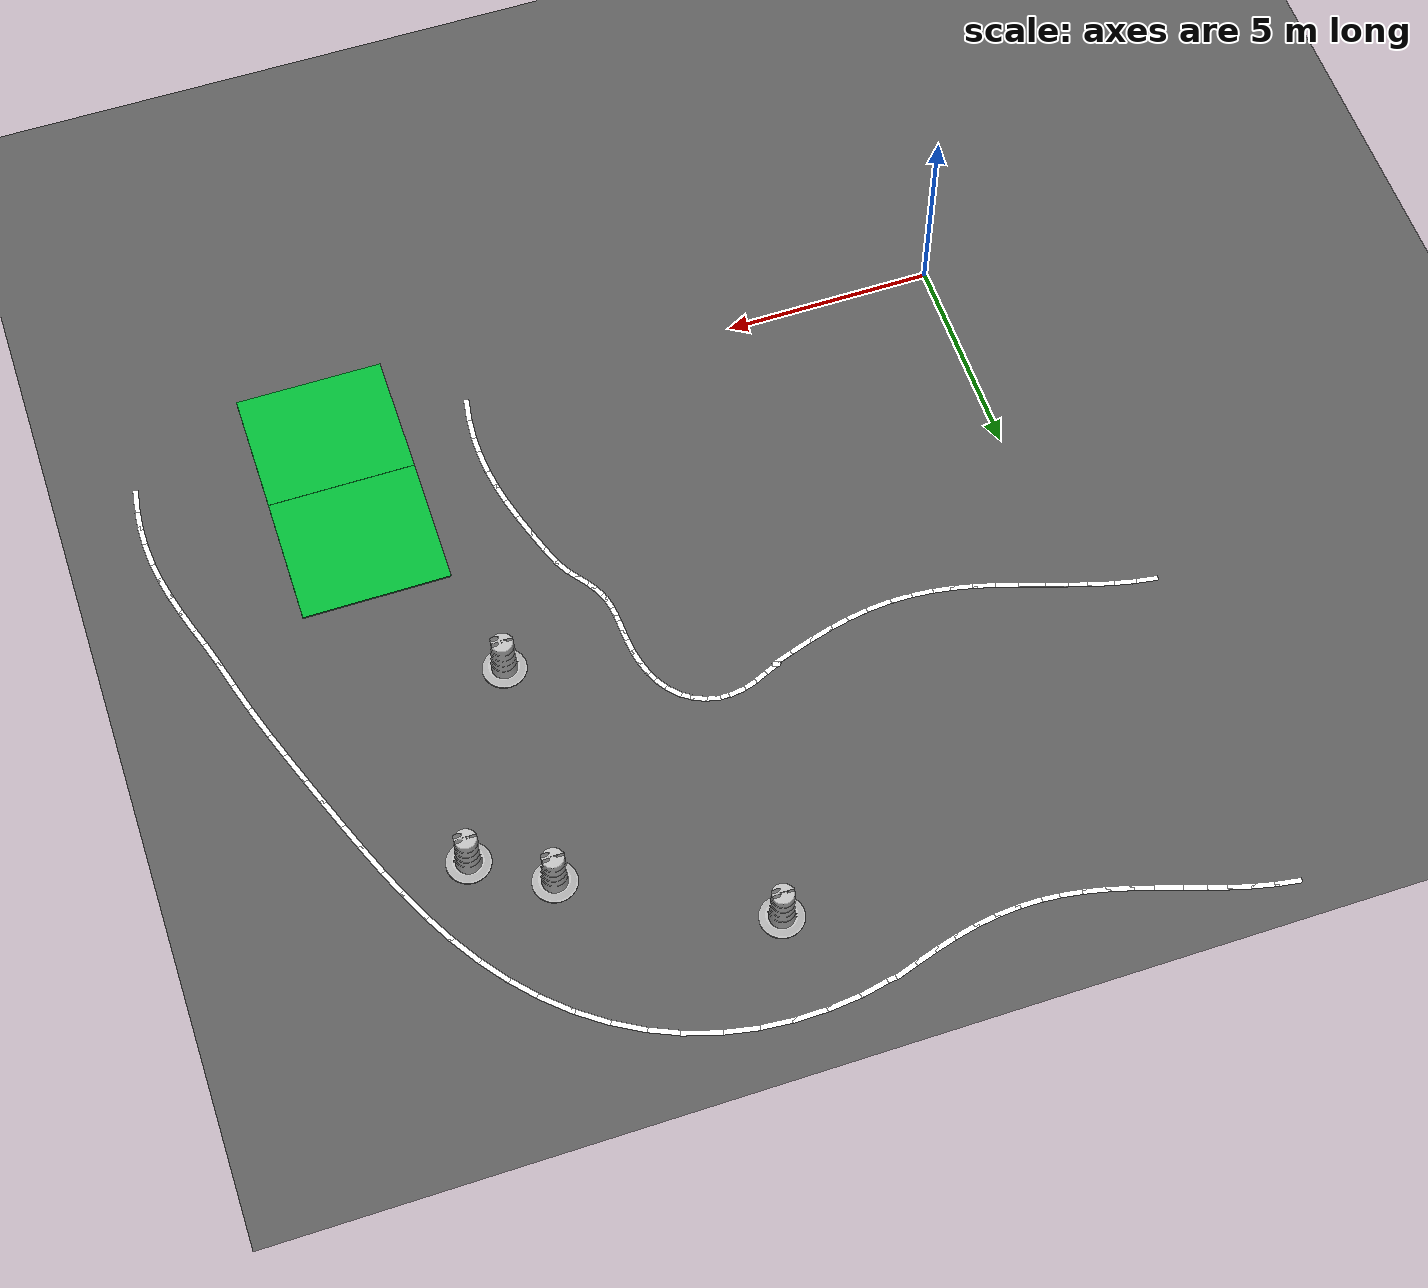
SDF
<sdf version="1.6">
 <model name="orange_igvc">
  <static>true</static>
  <link name="ground">
   <visual name="visual">
    <geometry><plane><size>43 37</size></plane></geometry>
    <material><ambient>0.35 0.35 0.35 1.0</ambient><diffuse>0.35 0.35 0.35 1.0</diffuse></material>
   </visual>
   <collision name="collision">
    <geometry><plane><size>43 37</size></plane></geometry>
    <surface><friction><ode><mu>100</mu><mu2>50</mu2></ode></friction></surface>
   </collision>
  </link>
  <link name="construction_barrel11">
   <pose>8.90 14.94 0.05 0 0 0</pose>
   <visual name="visual">
    <geometry><mesh><uri>model://construction_barrel/meshes/construction_barrel.dae</uri></mesh></geometry>
   </visual>
   <collision name="collision">
    <geometry><mesh><uri>model://construction_barrel/meshes/construction_barrel.dae</uri></mesh></geometry>
   </collision>
  </link>
  <link name="construction_barrel19">
   <pose>13.27 12.60 0.05 0 0 0</pose>
   <visual name="visual">
    <geometry><mesh><uri>model://construction_barrel/meshes/construction_barrel.dae</uri></mesh></geometry>
   </visual>
   <collision name="collision">
    <geometry><mesh><uri>model://construction_barrel/meshes/construction_barrel.dae</uri></mesh></geometry>
   </collision>
  </link>
  <link name="construction_barrel23">
   <pose>14.91 11.58 0.05 0 0 0</pose>
   <visual name="visual">
    <geometry><mesh><uri>model://construction_barrel/meshes/construction_barrel.dae</uri></mesh></geometry>
   </visual>
   <collision name="collision">
    <geometry><mesh><uri>model://construction_barrel/meshes/construction_barrel.dae</uri></mesh></geometry>
   </collision>
  </link>
  <link name="construction_barrel31">
   <pose>12.79 7.22 0.05 0 0 0</pose>
   <visual name="visual">
    <geometry><mesh><uri>model://construction_barrel/meshes/construction_barrel.dae</uri></mesh></geometry>
   </visual>
   <collision name="collision">
    <geometry><mesh><uri>model://construction_barrel/meshes/construction_barrel.dae</uri></mesh></geometry>
   </collision>
  </link>
  <link name="white_line_inner_70">
   <pose>11.611917648340356 0.25000000000000044 0.005 0 0 1.4125668012787456</pose>
   <visual name="visual">
    <geometry><box><size>0.6063251121473049 0.127 0.001</size></box></geometry>
    <material><ambient>1.0 1.0 1.0 1.0</ambient><diffuse>1.0 1.0 1.0 1.0</diffuse></material>
   </visual>
  </link>
  <link name="white_line_inner_71">
   <pose>11.67285191012886 0.7500000000000004 0.005 0 0 1.486820628804426</pose>
   <visual name="visual">
    <geometry><box><size>0.6017681745223843 0.127 0.001</size></box></geometry>
    <material><ambient>1.0 1.0 1.0 1.0</ambient><diffuse>1.0 1.0 1.0 1.0</diffuse></material>
   </visual>
  </link>
  <link name="white_line_inner_72">
   <pose>11.694874335370326 1.2500000000000004 0.005 0 0 1.5668802988157031</pose>
   <visual name="visual">
    <geometry><box><size>0.6000038338432805 0.127 0.001</size></box></geometry>
    <material><ambient>1.0 1.0 1.0 1.0</ambient><diffuse>1.0 1.0 1.0 1.0</diffuse></material>
   </visual>
  </link>
  <link name="white_line_inner_73">
   <pose>11.676711340682633 1.7500000000000004 0.005 0 0 1.6472152468510888</pose>
   <visual name="visual">
    <geometry><box><size>0.6014635237781666 0.127 0.001</size></box></geometry>
    <material><ambient>1.0 1.0 1.0 1.0</ambient><diffuse>1.0 1.0 1.0 1.0</diffuse></material>
   </visual>
  </link>
  <link name="white_line_inner_74">
   <pose>11.61941331392952 2.2500000000000004 0.005 0 0 1.7222516189107373</pose>
   <visual name="visual">
    <geometry><box><size>0.6057900033305835 0.127 0.001</size></box></geometry>
    <material><ambient>1.0 1.0 1.0 1.0</ambient><diffuse>1.0 1.0 1.0 1.0</diffuse></material>
   </visual>
  </link>
  <link name="white_line_inner_75">
   <pose>11.52629386902502 2.7500000000000004 0.005 0 0 1.7872070808961045</pose>
   <visual name="visual">
    <geometry><box><size>0.6119413172228307 0.127 0.001</size></box></geometry>
    <material><ambient>1.0 1.0 1.0 1.0</ambient><diffuse>1.0 1.0 1.0 1.0</diffuse></material>
   </visual>
  </link>
  <link name="white_line_inner_76">
   <pose>11.402738215648897 3.2500000000000004 0.005 0 0 1.8385757275982324</pose>
   <visual name="visual">
    <geometry><box><size>0.6184781338331522 0.127 0.001</size></box></geometry>
    <material><ambient>1.0 1.0 1.0 1.0</ambient><diffuse>1.0 1.0 1.0 1.0</diffuse></material>
   </visual>
  </link>
  <link name="white_line_inner_77">
   <pose>11.255891726083314 3.750000000000001 0.005 0 0 1.8741521695525571</pose>
   <visual name="visual">
    <geometry><box><size>0.6239226254668141 0.127 0.001</size></box></geometry>
    <material><ambient>1.0 1.0 1.0 1.0</ambient><diffuse>1.0 1.0 1.0 1.0</diffuse></material>
   </visual>
  </link>
  <link name="white_line_inner_78">
   <pose>11.094246709725727 4.250000000000001 0.005 0 0 1.8927535861324738</pose>
   <visual name="visual">
    <geometry><box><size>0.6270826048143481 0.127 0.001</size></box></geometry>
    <material><ambient>1.0 1.0 1.0 1.0</ambient><diffuse>1.0 1.0 1.0 1.0</diffuse></material>
   </visual>
  </link>
  <link name="white_line_inner_79">
   <pose>10.92740494203569 4.71753089076383 0.005 0 0 1.9371100195612485</pose>
   <visual name="visual">
    <geometry><box><size>0.5659775097596811 0.127 0.001</size></box></geometry>
    <material><ambient>1.0 1.0 1.0 1.0</ambient><diffuse>1.0 1.0 1.0 1.0</diffuse></material>
   </visual>
  </link>
  <link name="white_line_inner_80">
   <pose>10.760937143077209 5.082615791072405 0.005 0 0 2.083276681019217</pose>
   <visual name="visual">
    <geometry><box><size>0.43860875706233027 0.127 0.001</size></box></geometry>
    <material><ambient>1.0 1.0 1.0 1.0</ambient><diffuse>1.0 1.0 1.0 1.0</diffuse></material>
   </visual>
  </link>
  <link name="white_line_inner_81">
   <pose>10.59762490311704 5.336070156502927 0.005 0 0 2.2195356266287636</pose>
   <visual name="visual">
    <geometry><box><size>0.36579876002221146 0.127 0.001</size></box></geometry>
    <material><ambient>1.0 1.0 1.0 1.0</ambient><diffuse>1.0 1.0 1.0 1.0</diffuse></material>
   </visual>
  </link>
  <link name="white_line_inner_82">
   <pose>10.444179773702961 5.540775684752377 0.005 0 0 2.2080879807904714</pose>
   <visual name="visual">
    <geometry><box><size>0.34587262712506733 0.127 0.001</size></box></geometry>
    <material><ambient>1.0 1.0 1.0 1.0</ambient><diffuse>1.0 1.0 1.0 1.0</diffuse></material>
   </visual>
  </link>
  <link name="white_line_inner_83">
   <pose>10.308555353948575 5.734220658287349 0.005 0 0 2.1542611468571966</pose>
   <visual name="visual">
    <geometry><box><size>0.32680198911302827 0.127 0.001</size></box></geometry>
    <material><ambient>1.0 1.0 1.0 1.0</ambient><diffuse>1.0 1.0 1.0 1.0</diffuse></material>
   </visual>
  </link>
  <link name="white_line_inner_84">
   <pose>10.19639130803421 5.922758296306911 0.005 0 0 2.0575182158674155</pose>
   <visual name="visual">
    <geometry><box><size>0.31246957917884266 0.127 0.001</size></box></geometry>
    <material><ambient>1.0 1.0 1.0 1.0</ambient><diffuse>1.0 1.0 1.0 1.0</diffuse></material>
   </visual>
  </link>
  <link name="white_line_inner_85">
   <pose>10.1103453461517 6.11332988712447 0.005 0 0 1.9305098332265227</pose>
   <visual name="visual">
    <geometry><box><size>0.30656835584286357 0.127 0.001</size></box></geometry>
    <material><ambient>1.0 1.0 1.0 1.0</ambient><diffuse>1.0 1.0 1.0 1.0</diffuse></material>
   </visual>
  </link>
  <link name="white_line_inner_86">
   <pose>10.049940894335915 6.312652349398784 0.005 0 0 1.8009189581466902</pose>
   <visual name="visual">
    <geometry><box><size>0.3108559093196648 0.127 0.001</size></box></geometry>
    <material><ambient>1.0 1.0 1.0 1.0</ambient><diffuse>1.0 1.0 1.0 1.0</diffuse></material>
   </visual>
  </link>
  <link name="white_line_inner_87">
   <pose>10.011688437844658 6.52641695321627 0.005 0 0 1.6979431758905918</pose>
   <visual name="visual">
    <geometry><box><size>0.3240403064157617 0.127 0.001</size></box></geometry>
    <material><ambient>1.0 1.0 1.0 1.0</ambient><diffuse>1.0 1.0 1.0 1.0</diffuse></material>
   </visual>
  </link>
  <link name="white_line_inner_88">
   <pose>9.98946770429962 6.758576141107834 0.005 0 0 1.6369245774617542</pose>
   <visual name="visual">
    <geometry><box><size>0.34261686664679064 0.127 0.001</size></box></geometry>
    <material><ambient>1.0 1.0 1.0 1.0</ambient><diffuse>1.0 1.0 1.0 1.0</diffuse></material>
   </visual>
  </link>
  <link name="white_line_inner_89">
   <pose>9.97513461067819 7.010787565055372 0.005 0 0 1.6189188952179305</pose>
   <visual name="visual">
    <geometry><box><size>0.36264031325528234 0.127 0.001</size></box></geometry>
    <material><ambient>1.0 1.0 1.0 1.0</ambient><diffuse>1.0 1.0 1.0 1.0</diffuse></material>
   </visual>
  </link>
  <link name="white_line_inner_90">
   <pose>9.95929698696899 7.282070196946199 0.005 0 0 1.6386407499908542</pose>
   <visual name="visual">
    <geometry><box><size>0.3808751680827147 0.127 0.001</size></box></geometry>
    <material><ambient>1.0 1.0 1.0 1.0</ambient><diffuse>1.0 1.0 1.0 1.0</diffuse></material>
   </visual>
  </link>
  <link name="white_line_inner_91">
   <pose>9.932188308423294 7.568707976455217 0.005 0 0 1.6902608150786145</pose>
   <visual name="visual">
    <geometry><box><size>0.3951502117608411 0.127 0.001</size></box></geometry>
    <material><ambient>1.0 1.0 1.0 1.0</ambient><diffuse>1.0 1.0 1.0 1.0</diffuse></material>
   </visual>
  </link>
  <link name="white_line_inner_92">
   <pose>9.884560348003163 7.864413704876883 0.005 0 0 1.7695024777929744</pose>
   <visual name="visual">
    <geometry><box><size>0.40435372591740204 0.127 0.001</size></box></geometry>
    <material><ambient>1.0 1.0 1.0 1.0</ambient><diffuse>1.0 1.0 1.0 1.0</diffuse></material>
   </visual>
  </link>
  <link name="white_line_inner_93">
   <pose>9.808514540670817 8.160741860030111 0.005 0 0 1.8738229281370924</pose>
   <visual name="visual">
    <geometry><box><size>0.4083400980282311 0.127 0.001</size></box></geometry>
    <material><ambient>1.0 1.0 1.0 1.0</ambient><diffuse>1.0 1.0 1.0 1.0</diffuse></material>
   </visual>
  </link>
  <link name="white_line_inner_94">
   <pose>9.698198014107042 8.44771590054928 0.005 0 0 2.0018734805407825</pose>
   <visual name="visual">
    <geometry><box><size>0.40781693572746747 0.127 0.001</size></box></geometry>
    <material><ambient>1.0 1.0 1.0 1.0</ambient><diffuse>1.0 1.0 1.0 1.0</diffuse></material>
   </visual>
  </link>
  <link name="white_line_inner_95">
   <pose>9.550303104602943 8.714615570900172 0.005 0 0 2.1526176604836973</pose>
   <visual name="visual">
    <geometry><box><size>0.40419376126991347 0.127 0.001</size></box></geometry>
    <material><ambient>1.0 1.0 1.0 1.0</ambient><diffuse>1.0 1.0 1.0 1.0</diffuse></material>
   </visual>
  </link>
  <link name="white_line_inner_96">
   <pose>9.364327550101503 8.950854558831319 0.005 0 0 2.324174609099814</pose>
   <visual name="visual">
    <geometry><box><size>0.39934290314154974 0.127 0.001</size></box></geometry>
    <material><ambient>1.0 1.0 1.0 1.0</ambient><diffuse>1.0 1.0 1.0 1.0</diffuse></material>
   </visual>
  </link>
  <link name="white_line_inner_97">
   <pose>9.142574741586525 9.146869997119559 0.005 0 0 2.5125806330810847</pose>
   <visual name="visual">
    <geometry><box><size>0.3952268328136672 0.127 0.001</size></box></geometry>
    <material><ambient>1.0 1.0 1.0 1.0</ambient><diffuse>1.0 1.0 1.0 1.0</diffuse></material>
   </visual>
  </link>
  <link name="white_line_inner_98">
   <pose>8.889897380401525 9.294943570008613 0.005 0 0 2.7110699676302135</pose>
   <visual name="visual">
    <geometry><box><size>0.3934055144641626 0.127 0.001</size></box></geometry>
    <material><ambient>1.0 1.0 1.0 1.0</ambient><diffuse>1.0 1.0 1.0 1.0</diffuse></material>
   </visual>
  </link>
  <link name="white_line_inner_99">
   <pose>8.613211434789378 9.389879560125891 0.005 0 0 2.9106602727090336</pose>
   <visual name="visual">
    <geometry><box><size>0.39455985482060363 0.127 0.001</size></box></geometry>
    <material><ambient>1.0 1.0 1.0 1.0</ambient><diffuse>1.0 1.0 1.0 1.0</diffuse></material>
   </visual>
  </link>
  <link name="white_line_inner_100">
   <pose>8.320828258266358 9.429477565235976 0.005 0 0 3.102101203244376</pose>
   <visual name="visual">
    <geometry><box><size>0.3982586059972745 0.127 0.001</size></box></geometry>
    <material><ambient>1.0 1.0 1.0 1.0</ambient><diffuse>1.0 1.0 1.0 1.0</diffuse></material>
   </visual>
  </link>
  <link name="white_line_inner_101">
   <pose>8.021669208984925 9.414755714183073 0.005 0 0 -3.0051810573138606</pose>
   <visual name="visual">
    <geometry><box><size>0.4031078039558482 0.127 0.001</size></box></geometry>
    <material><ambient>1.0 1.0 1.0 1.0</ambient><diffuse>1.0 1.0 1.0 1.0</diffuse></material>
   </visual>
  </link>
  <link name="white_line_inner_102">
   <pose>7.724437591096623 9.349902383881318 0.005 0 0 -2.8494000201537975</pose>
   <visual name="visual">
    <geometry><box><size>0.40719164058462987 0.127 0.001</size></box></geometry>
    <material><ambient>1.0 1.0 1.0 1.0</ambient><diffuse>1.0 1.0 1.0 1.0</diffuse></material>
   </visual>
  </link>
  <link name="white_line_inner_103">
   <pose>7.436826276058932 9.241958656897685 0.005 0 0 -2.7159993606681874</pose>
   <visual name="visual">
    <geometry><box><size>0.4085785058951492 0.127 0.001</size></box></geometry>
    <material><ambient>1.0 1.0 1.0 1.0</ambient><diffuse>1.0 1.0 1.0 1.0</diffuse></material>
   </visual>
  </link>
  <link name="white_line_inner_104">
   <pose>7.110949960936896 9.101435305184651 0.005 0 0 -2.748669920176373</pose>
   <visual name="visual">
    <geometry><box><size>0.501281267019452 0.127 0.001</size></box></geometry>
    <material><ambient>1.0 1.0 1.0 1.0</ambient><diffuse>1.0 1.0 1.0 1.0</diffuse></material>
   </visual>
  </link>
  <link name="white_line_inner_105">
   <pose>6.961827474024139 9.01230623778753 0.005 0 0 -0.32744670137428816</pose>
   <visual name="visual">
    <geometry><box><size>0.17652209786668063 0.127 0.001</size></box></geometry>
    <material><ambient>1.0 1.0 1.0 1.0</ambient><diffuse>1.0 1.0 1.0 1.0</diffuse></material>
   </visual>
  </link>
  <link name="white_line_inner_106">
   <pose>6.7490277923868085 8.916442478737114 0.005 0 0 -2.8178602727569557</pose>
   <visual name="visual">
    <geometry><box><size>0.6253447619169877 0.127 0.001</size></box></geometry>
    <material><ambient>1.0 1.0 1.0 1.0</ambient><diffuse>1.0 1.0 1.0 1.0</diffuse></material>
   </visual>
  </link>
  <link name="white_line_inner_107">
   <pose>6.249999999999999 8.754158973102301 0.005 0 0 -2.8365209423373487</pose>
   <visual name="visual">
    <geometry><box><size>0.6242049454353731 0.127 0.001</size></box></geometry>
    <material><ambient>1.0 1.0 1.0 1.0</ambient><diffuse>1.0 1.0 1.0 1.0</diffuse></material>
   </visual>
  </link>
  <link name="white_line_inner_108">
   <pose>5.749999999999999 8.606092986514444 0.005 0 0 -2.8710319324557583</pose>
   <visual name="visual">
    <geometry><box><size>0.6188760986857685 0.127 0.001</size></box></geometry>
    <material><ambient>1.0 1.0 1.0 1.0</ambient><diffuse>1.0 1.0 1.0 1.0</diffuse></material>
   </visual>
  </link>
  <link name="white_line_inner_109">
   <pose>5.249999999999999 8.480807117055999 0.005 0 0 -2.9214382244439383</pose>
   <visual name="visual">
    <geometry><box><size>0.612366615549448 0.127 0.001</size></box></geometry>
    <material><ambient>1.0 1.0 1.0 1.0</ambient><diffuse>1.0 1.0 1.0 1.0</diffuse></material>
   </visual>
  </link>
  <link name="white_line_inner_110">
   <pose>4.749999999999999 8.385546797489555 0.005 0 0 -2.9856104274699824</pose>
   <visual name="visual">
    <geometry><box><size>0.6061448935681862 0.127 0.001</size></box></geometry>
    <material><ambient>1.0 1.0 1.0 1.0</ambient><diffuse>1.0 1.0 1.0 1.0</diffuse></material>
   </visual>
  </link>
  <link name="white_line_inner_111">
   <pose>4.249999999999999 8.325821046855692 0.005 0 0 -3.0601300299891165</pose>
   <visual name="visual">
    <geometry><box><size>0.6016636395291725 0.127 0.001</size></box></geometry>
    <material><ambient>1.0 1.0 1.0 1.0</ambient><diffuse>1.0 1.0 1.0 1.0</diffuse></material>
   </visual>
  </link>
  <link name="white_line_inner_112">
   <pose>3.749999999999999 8.30508387726514 0.005 0 0 -3.140287278833526</pose>
   <visual name="visual">
    <geometry><box><size>0.600000426001116 0.127 0.001</size></box></geometry>
    <material><ambient>1.0 1.0 1.0 1.0</ambient><diffuse>1.0 1.0 1.0 1.0</diffuse></material>
   </visual>
  </link>
  <link name="white_line_inner_113">
   <pose>3.249999999999999 8.324534544217379 0.005 0 0 3.06264901496262</pose>
   <visual name="visual">
    <geometry><box><size>0.6015620805333598 0.127 0.001</size></box></geometry>
    <material><ambient>1.0 1.0 1.0 1.0</ambient><diffuse>1.0 1.0 1.0 1.0</diffuse></material>
   </visual>
  </link>
  <link name="white_line_inner_114">
   <pose>2.749999999999999 8.38304819221035 0.005 0 0 2.9878685511873218</pose>
   <visual name="visual">
    <geometry><box><size>0.6059665090060959 0.127 0.001</size></box></geometry>
    <material><ambient>1.0 1.0 1.0 1.0</ambient><diffuse>1.0 1.0 1.0 1.0</diffuse></material>
   </visual>
  </link>
  <link name="white_line_inner_115">
   <pose>2.249999999999999 8.477240906489268 0.005 0 0 2.9233029280701395</pose>
   <visual name="visual">
    <geometry><box><size>0.6121537913116334 0.127 0.001</size></box></geometry>
    <material><ambient>1.0 1.0 1.0 1.0</ambient><diffuse>1.0 1.0 1.0 1.0</diffuse></material>
   </visual>
  </link>
  <link name="white_line_inner_116">
   <pose>1.7499999999999991 8.601665408913474 0.005 0 0 2.872414351169806</pose>
   <visual name="visual">
    <geometry><box><size>0.6186777176241944 0.127 0.001</size></box></geometry>
    <material><ambient>1.0 1.0 1.0 1.0</ambient><diffuse>1.0 1.0 1.0 1.0</diffuse></material>
   </visual>
  </link>
  <link name="white_line_inner_117">
   <pose>1.2499999999999991 8.749126080613655 0.005 0 0 2.8373700525856527</pose>
   <visual name="visual">
    <geometry><box><size>0.6240650064376615 0.127 0.001</size></box></geometry>
    <material><ambient>1.0 1.0 1.0 1.0</ambient><diffuse>1.0 1.0 1.0 1.0</diffuse></material>
   </visual>
  </link>
  <link name="white_line_inner_118">
   <pose>0.7499999999999992 8.911095093299606 0.005 0 0 2.8193258294286383</pose>
   <visual name="visual">
    <geometry><box><size>0.6271370619164043 0.127 0.001</size></box></geometry>
    <material><ambient>1.0 1.0 1.0 1.0</ambient><diffuse>1.0 1.0 1.0 1.0</diffuse></material>
   </visual>
  </link>
  <link name="white_line_inner_119">
   <pose>0.24999999999999928 9.078205583843728 0.005 0 0 2.8187610819993583</pose>
   <visual name="visual">
    <geometry><box><size>0.6272365686535132 0.127 0.001</size></box></geometry>
    <material><ambient>1.0 1.0 1.0 1.0</ambient><diffuse>1.0 1.0 1.0 1.0</diffuse></material>
   </visual>
  </link>
  <link name="white_line_inner_120">
   <pose>-0.25000000000000067 9.24079335125995 0.005 0 0 2.835689504444868</pose>
   <visual name="visual">
    <geometry><box><size>0.6243424107691669 0.127 0.001</size></box></geometry>
    <material><ambient>1.0 1.0 1.0 1.0</ambient><diffuse>1.0 1.0 1.0 1.0</diffuse></material>
   </visual>
  </link>
  <link name="white_line_inner_121">
   <pose>-0.7500000000000007 9.389455749089201 0.005 0 0 2.8696660483934484</pose>
   <visual name="visual">
    <geometry><box><size>0.6190732307078652 0.127 0.001</size></box></geometry>
    <material><ambient>1.0 1.0 1.0 1.0</ambient><diffuse>1.0 1.0 1.0 1.0</diffuse></material>
   </visual>
  </link>
  <link name="white_line_inner_122">
   <pose>-1.2500000000000007 9.51559545177152 0.005 0 0 2.9195878799594857</pose>
   <visual name="visual">
    <geometry><box><size>0.6125797383418107 0.127 0.001</size></box></geometry>
    <material><ambient>1.0 1.0 1.0 1.0</ambient><diffuse>1.0 1.0 1.0 1.0</diffuse></material>
   </visual>
  </link>
  <link name="white_line_inner_123">
   <pose>-1.7500000000000004 9.611917648340366 0.005 0 0 2.9833631280736523</pose>
   <visual name="visual">
    <geometry><box><size>0.6063251121473039 0.127 0.001</size></box></geometry>
    <material><ambient>1.0 1.0 1.0 1.0</ambient><diffuse>1.0 1.0 1.0 1.0</diffuse></material>
   </visual>
  </link>
  <link name="white_line_outer_70">
   <pose>19.611917648340356 0.24999999999999944 0.005 0 0 1.4125668012787456</pose>
   <visual name="visual">
    <geometry><box><size>0.6063251121473049 0.127 0.001</size></box></geometry>
    <material><ambient>1.0 1.0 1.0 1.0</ambient><diffuse>1.0 1.0 1.0 1.0</diffuse></material>
   </visual>
  </link>
  <link name="white_line_outer_71">
   <pose>19.672851910128863 0.7499999999999994 0.005 0 0 1.486820628804426</pose>
   <visual name="visual">
    <geometry><box><size>0.6017681745223843 0.127 0.001</size></box></geometry>
    <material><ambient>1.0 1.0 1.0 1.0</ambient><diffuse>1.0 1.0 1.0 1.0</diffuse></material>
   </visual>
  </link>
  <link name="white_line_outer_72">
   <pose>19.694874335370322 1.2499999999999993 0.005 0 0 1.5668802988157067</pose>
   <visual name="visual">
    <geometry><box><size>0.6000038338432804 0.127 0.001</size></box></geometry>
    <material><ambient>1.0 1.0 1.0 1.0</ambient><diffuse>1.0 1.0 1.0 1.0</diffuse></material>
   </visual>
  </link>
  <link name="white_line_outer_73">
   <pose>19.67671134068263 1.7499999999999993 0.005 0 0 1.6472152468510852</pose>
   <visual name="visual">
    <geometry><box><size>0.6014635237781664 0.127 0.001</size></box></geometry>
    <material><ambient>1.0 1.0 1.0 1.0</ambient><diffuse>1.0 1.0 1.0 1.0</diffuse></material>
   </visual>
  </link>
  <link name="white_line_outer_74">
   <pose>19.61941331392952 2.2499999999999996 0.005 0 0 1.7222516189107373</pose>
   <visual name="visual">
    <geometry><box><size>0.6057900033305837 0.127 0.001</size></box></geometry>
    <material><ambient>1.0 1.0 1.0 1.0</ambient><diffuse>1.0 1.0 1.0 1.0</diffuse></material>
   </visual>
  </link>
  <link name="white_line_outer_75">
   <pose>19.526293869025018 2.7499999999999996 0.005 0 0 1.7872070808961045</pose>
   <visual name="visual">
    <geometry><box><size>0.6119413172228307 0.127 0.001</size></box></geometry>
    <material><ambient>1.0 1.0 1.0 1.0</ambient><diffuse>1.0 1.0 1.0 1.0</diffuse></material>
   </visual>
  </link>
  <link name="white_line_outer_76">
   <pose>19.402738215648895 3.2499999999999996 0.005 0 0 1.8385757275982324</pose>
   <visual name="visual">
    <geometry><box><size>0.6184781338331522 0.127 0.001</size></box></geometry>
    <material><ambient>1.0 1.0 1.0 1.0</ambient><diffuse>1.0 1.0 1.0 1.0</diffuse></material>
   </visual>
  </link>
  <link name="white_line_outer_77">
   <pose>19.255891726083313 3.7499999999999996 0.005 0 0 1.8741521695525574</pose>
   <visual name="visual">
    <geometry><box><size>0.6239226254668137 0.127 0.001</size></box></geometry>
    <material><ambient>1.0 1.0 1.0 1.0</ambient><diffuse>1.0 1.0 1.0 1.0</diffuse></material>
   </visual>
  </link>
  <link name="white_line_outer_78">
   <pose>19.094246709725727 4.249999999999999 0.005 0 0 1.8927535861324742</pose>
   <visual name="visual">
    <geometry><box><size>0.6270826048143476 0.127 0.001</size></box></geometry>
    <material><ambient>1.0 1.0 1.0 1.0</ambient><diffuse>1.0 1.0 1.0 1.0</diffuse></material>
   </visual>
  </link>
  <link name="white_line_outer_79">
   <pose>18.92691675019516 4.780023261441684 0.005 0 0 1.8620310599514998</pose>
   <visual name="visual">
    <geometry><box><size>0.6846668006661611 0.127 0.001</size></box></geometry>
    <material><ambient>1.0 1.0 1.0 1.0</ambient><diffuse>1.0 1.0 1.0 1.0</diffuse></material>
   </visual>
  </link>
  <link name="white_line_outer_80">
   <pose>18.752638994037078 5.394945433119778 0.005 0 0 1.8342739389570075</pose>
   <visual name="visual">
    <geometry><box><size>0.793738665629281 0.127 0.001</size></box></geometry>
    <material><ambient>1.0 1.0 1.0 1.0</ambient><diffuse>1.0 1.0 1.0 1.0</diffuse></material>
   </visual>
  </link>
  <link name="white_line_outer_81">
   <pose>18.558605614834754 6.084606361413357 0.005 0 0 1.855168535449647</pose>
   <visual name="visual">
    <geometry><box><size>0.8392123014489788 0.127 0.001</size></box></geometry>
    <material><ambient>1.0 1.0 1.0 1.0</ambient><diffuse>1.0 1.0 1.0 1.0</diffuse></material>
   </visual>
  </link>
  <link name="white_line_outer_82">
   <pose>18.3428636950253 6.785087805342375 0.005 0 0 1.8842124906174598</pose>
   <visual name="visual">
    <geometry><box><size>0.8268465377981755 0.127 0.001</size></box></geometry>
    <material><ambient>1.0 1.0 1.0 1.0</ambient><diffuse>1.0 1.0 1.0 1.0</diffuse></material>
   </visual>
  </link>
  <link name="white_line_outer_83">
   <pose>18.114098293196175 7.469449682354526 0.005 0 0 1.9027107661556573</pose>
   <visual name="visual">
    <geometry><box><size>0.816385017799577 0.127 0.001</size></box></geometry>
    <material><ambient>1.0 1.0 1.0 1.0</ambient><diffuse>1.0 1.0 1.0 1.0</diffuse></material>
   </visual>
  </link>
  <link name="white_line_outer_84">
   <pose>17.878312787069476 8.142128191646522 0.005 0 0 1.9132057694705689</pose>
   <visual name="visual">
    <geometry><box><size>0.8092449097853085 0.127 0.001</size></box></geometry>
    <material><ambient>1.0 1.0 1.0 1.0</ambient><diffuse>1.0 1.0 1.0 1.0</diffuse></material>
   </visual>
  </link>
  <link name="white_line_outer_85">
   <pose>17.638647625993645 8.80817406179018 0.005 0 0 1.9192138071887173</pose>
   <visual name="visual">
    <geometry><box><size>0.8064683552190084 0.127 0.001</size></box></geometry>
    <material><ambient>1.0 1.0 1.0 1.0</ambient><diffuse>1.0 1.0 1.0 1.0</diffuse></material>
   </visual>
  </link>
  <link name="white_line_outer_86">
   <pose>17.39522611568892 9.472447494558722 0.005 0 0 1.9248744426932587</pose>
   <visual name="visual">
    <geometry><box><size>0.8084764983142396 0.127 0.001</size></box></geometry>
    <material><ambient>1.0 1.0 1.0 1.0</ambient><diffuse>1.0 1.0 1.0 1.0</diffuse></material>
   </visual>
  </link>
  <link name="white_line_outer_87">
   <pose>17.145273419109895 10.138824136448836 0.005 0 0 1.9343779414756561</pose>
   <visual name="visual">
    <geometry><box><size>0.8149638642097912 0.127 0.001</size></box></geometry>
    <material><ambient>1.0 1.0 1.0 1.0</ambient><diffuse>1.0 1.0 1.0 1.0</diffuse></material>
   </visual>
  </link>
  <link name="white_line_outer_88">
   <pose>16.88349594878538 10.809488989668733 0.005 0 0 1.9513733652935359</pose>
   <visual name="visual">
    <geometry><box><size>0.824975325728837 0.127 0.001</size></box></geometry>
    <material><ambient>1.0 1.0 1.0 1.0</ambient><diffuse>1.0 1.0 1.0 1.0</diffuse></material>
   </visual>
  </link>
  <link name="white_line_outer_89">
   <pose>16.60268508562333 11.484387350961303 0.005 0 0 1.9785732015339181</pose>
   <visual name="visual">
    <geometry><box><size>0.8371346223961613 0.127 0.001</size></box></geometry>
    <material><ambient>1.0 1.0 1.0 1.0</ambient><diffuse>1.0 1.0 1.0 1.0</diffuse></material>
   </visual>
  </link>
  <link name="white_line_outer_90">
   <pose>16.29448924959975 12.160887608769123 0.005 0 0 2.017641916372505</pose>
   <visual name="visual">
    <geometry><box><size>0.8499406166443471 0.127 0.001</size></box></geometry>
    <material><ambient>1.0 1.0 1.0 1.0</ambient><diffuse>1.0 1.0 1.0 1.0</diffuse></material>
   </visual>
  </link>
  <link name="white_line_outer_91">
   <pose>15.950283568528464 12.833691336609629 0.005 0 0 2.069304429352272</pose>
   <visual name="visual">
    <geometry><box><size>0.8620430461932305 0.127 0.001</size></box></geometry>
    <material><ambient>1.0 1.0 1.0 1.0</ambient><diffuse>1.0 1.0 1.0 1.0</diffuse></material>
   </visual>
  </link>
  <link name="white_line_outer_92">
   <pose>15.56205807238047 13.495003366013066 0.005 0 0 2.133543952359323</pose>
   <visual name="visual">
    <geometry><box><size>0.8724401988189558 0.127 0.001</size></box></geometry>
    <material><ambient>1.0 1.0 1.0 1.0</ambient><diffuse>1.0 1.0 1.0 1.0</diffuse></material>
   </visual>
  </link>
  <link name="white_line_outer_93">
   <pose>15.12324422220614 14.134950490017067 0.005 0 0 2.2097816264823074</pose>
   <visual name="visual">
    <geometry><box><size>0.8805769999479356 0.127 0.001</size></box></geometry>
    <material><ambient>1.0 1.0 1.0 1.0</ambient><diffuse>1.0 1.0 1.0 1.0</diffuse></material>
   </visual>
  </link>
  <link name="white_line_outer_94">
   <pose>14.629405747130253 14.742214342536158 0.005 0 0 2.2969886713720644</pose>
   <visual name="visual">
    <geometry><box><size>0.8863462165380114 0.127 0.001</size></box></geometry>
    <material><ambient>1.0 1.0 1.0 1.0</ambient><diffuse>1.0 1.0 1.0 1.0</diffuse></material>
   </visual>
  </link>
  <link name="white_line_outer_95">
   <pose>14.078732628445406 15.304823943174531 0.005 0 0 2.3937324900914803</pose>
   <visual name="visual">
    <geometry><box><size>0.8900076375282095 0.127 0.001</size></box></geometry>
    <material><ambient>1.0 1.0 1.0 1.0</ambient><diffuse>1.0 1.0 1.0 1.0</diffuse></material>
   </visual>
  </link>
  <link name="white_line_outer_96">
   <pose>13.472295444381912 15.811038238731193 0.005 0 0 2.4981882964726365</pose>
   <visual name="visual">
    <geometry><box><size>0.8920470249363599 0.127 0.001</size></box></geometry>
    <material><ambient>1.0 1.0 1.0 1.0</ambient><diffuse>1.0 1.0 1.0 1.0</diffuse></material>
   </visual>
  </link>
  <link name="white_line_outer_97">
   <pose>12.814039479589052 16.250240114184223 0.005 0 0 2.6081587262316983</pose>
   <visual name="visual">
    <geometry><box><size>0.8930034584355984 0.127 0.001</size></box></geometry>
    <material><ambient>1.0 1.0 1.0 1.0</ambient><diffuse>1.0 1.0 1.0 1.0</diffuse></material>
   </visual>
  </link>
  <link name="white_line_outer_98">
   <pose>12.110521970894325 16.613761615944462 0.005 0 0 2.7211376207034372</pose>
   <visual name="visual">
    <geometry><box><size>0.8933005421539817 0.127 0.001</size></box></geometry>
    <material><ambient>1.0 1.0 1.0 1.0</ambient><diffuse>1.0 1.0 1.0 1.0</diffuse></material>
   </visual>
  </link>
  <link name="white_line_outer_99">
   <pose>11.370419407668578 16.89556570708771 0.005 0 0 2.8344325040350564</pose>
   <visual name="visual">
    <geometry><box><size>0.8931195717447301 0.127 0.001</size></box></geometry>
    <material><ambient>1.0 1.0 1.0 1.0</ambient><diffuse>1.0 1.0 1.0 1.0</diffuse></material>
   </visual>
  </link>
  <link name="white_line_outer_100">
   <pose>10.603852775402675 17.092722269443044 0.005 0 0 2.9453305340204747</pose>
   <visual name="visual">
    <geometry><box><size>0.8923460180257418 0.127 0.001</size></box></geometry>
    <material><ambient>1.0 1.0 1.0 1.0</ambient><diffuse>1.0 1.0 1.0 1.0</diffuse></material>
   </visual>
  </link>
  <link name="white_line_outer_101">
   <pose>9.821595108496119 17.205634169060417 0.005 0 0 3.051269536581815</pose>
   <visual name="visual">
    <geometry><box><size>0.8906032956804227 0.127 0.001</size></box></geometry>
    <material><ambient>1.0 1.0 1.0 1.0</ambient><diffuse>1.0 1.0 1.0 1.0</diffuse></material>
   </visual>
  </link>
  <link name="white_line_outer_102">
   <pose>9.03423620086388 17.237991375788987 0.005 0 0 -3.133212345672571</pose>
   <visual name="visual">
    <geometry><box><size>0.8873649514306152 0.127 0.001</size></box></geometry>
    <material><ambient>1.0 1.0 1.0 1.0</ambient><diffuse>1.0 1.0 1.0 1.0</diffuse></material>
   </visual>
  </link>
  <link name="white_line_outer_103">
   <pose>8.25138286054106 17.196455367128948 0.005 0 0 -3.043658318510258</pose>
   <visual name="visual">
    <geometry><box><size>0.8821170752051855 0.127 0.001</size></box></geometry>
    <material><ambient>1.0 1.0 1.0 1.0</ambient><diffuse>1.0 1.0 1.0 1.0</diffuse></material>
   </visual>
  </link>
  <link name="white_line_outer_104">
   <pose>7.535461853076924 17.0889094533268 0.005 0 0 -2.932565777737607</pose>
   <visual name="visual">
    <geometry><box><size>0.7680130718661411 0.127 0.001</size></box></geometry>
    <material><ambient>1.0 1.0 1.0 1.0</ambient><diffuse>1.0 1.0 1.0 1.0</diffuse></material>
   </visual>
  </link>
  <link name="white_line_outer_105">
   <pose>7.10533497471973 17.00979996691961 0.005 0 0 -3.047084569655979</pose>
   <visual name="visual">
    <geometry><box><size>0.30770802976298417 0.127 0.001</size></box></geometry>
    <material><ambient>1.0 1.0 1.0 1.0</ambient><diffuse>1.0 1.0 1.0 1.0</diffuse></material>
   </visual>
  </link>
  <link name="white_line_outer_106">
   <pose>6.7509722076131915 16.916442006143264 0.005 0 0 -2.8202003216366474</pose>
   <visual name="visual">
    <geometry><box><size>0.629032733784329 0.127 0.001</size></box></geometry>
    <material><ambient>1.0 1.0 1.0 1.0</ambient><diffuse>1.0 1.0 1.0 1.0</diffuse></material>
   </visual>
  </link>
  <link name="white_line_outer_107">
   <pose>6.250000000000001 16.7541589731023 0.005 0 0 -2.8365209423373487</pose>
   <visual name="visual">
    <geometry><box><size>0.6242049454353731 0.127 0.001</size></box></geometry>
    <material><ambient>1.0 1.0 1.0 1.0</ambient><diffuse>1.0 1.0 1.0 1.0</diffuse></material>
   </visual>
  </link>
  <link name="white_line_outer_108">
   <pose>5.750000000000001 16.606092986514444 0.005 0 0 -2.8710319324557547</pose>
   <visual name="visual">
    <geometry><box><size>0.618876098685769 0.127 0.001</size></box></geometry>
    <material><ambient>1.0 1.0 1.0 1.0</ambient><diffuse>1.0 1.0 1.0 1.0</diffuse></material>
   </visual>
  </link>
  <link name="white_line_outer_109">
   <pose>5.250000000000001 16.480807117055996 0.005 0 0 -2.921438224443942</pose>
   <visual name="visual">
    <geometry><box><size>0.6123666155494476 0.127 0.001</size></box></geometry>
    <material><ambient>1.0 1.0 1.0 1.0</ambient><diffuse>1.0 1.0 1.0 1.0</diffuse></material>
   </visual>
  </link>
  <link name="white_line_outer_110">
   <pose>4.750000000000001 16.385546797489553 0.005 0 0 -2.9856104274699824</pose>
   <visual name="visual">
    <geometry><box><size>0.6061448935681862 0.127 0.001</size></box></geometry>
    <material><ambient>1.0 1.0 1.0 1.0</ambient><diffuse>1.0 1.0 1.0 1.0</diffuse></material>
   </visual>
  </link>
  <link name="white_line_outer_111">
   <pose>4.250000000000001 16.325821046855694 0.005 0 0 -3.0601300299891165</pose>
   <visual name="visual">
    <geometry><box><size>0.6016636395291725 0.127 0.001</size></box></geometry>
    <material><ambient>1.0 1.0 1.0 1.0</ambient><diffuse>1.0 1.0 1.0 1.0</diffuse></material>
   </visual>
  </link>
  <link name="white_line_outer_112">
   <pose>3.750000000000001 16.30508387726514 0.005 0 0 -3.140287278833526</pose>
   <visual name="visual">
    <geometry><box><size>0.6000004260011165 0.127 0.001</size></box></geometry>
    <material><ambient>1.0 1.0 1.0 1.0</ambient><diffuse>1.0 1.0 1.0 1.0</diffuse></material>
   </visual>
  </link>
  <link name="white_line_outer_113">
   <pose>3.2500000000000004 16.32453454421738 0.005 0 0 3.0626490149626235</pose>
   <visual name="visual">
    <geometry><box><size>0.6015620805333597 0.127 0.001</size></box></geometry>
    <material><ambient>1.0 1.0 1.0 1.0</ambient><diffuse>1.0 1.0 1.0 1.0</diffuse></material>
   </visual>
  </link>
  <link name="white_line_outer_114">
   <pose>2.7500000000000004 16.38304819221035 0.005 0 0 2.987868551187318</pose>
   <visual name="visual">
    <geometry><box><size>0.6059665090060962 0.127 0.001</size></box></geometry>
    <material><ambient>1.0 1.0 1.0 1.0</ambient><diffuse>1.0 1.0 1.0 1.0</diffuse></material>
   </visual>
  </link>
  <link name="white_line_outer_115">
   <pose>2.2500000000000004 16.477240906489268 0.005 0 0 2.9233029280701395</pose>
   <visual name="visual">
    <geometry><box><size>0.6121537913116334 0.127 0.001</size></box></geometry>
    <material><ambient>1.0 1.0 1.0 1.0</ambient><diffuse>1.0 1.0 1.0 1.0</diffuse></material>
   </visual>
  </link>
  <link name="white_line_outer_116">
   <pose>1.7500000000000004 16.601665408913476 0.005 0 0 2.8724143511698057</pose>
   <visual name="visual">
    <geometry><box><size>0.6186777176241942 0.127 0.001</size></box></geometry>
    <material><ambient>1.0 1.0 1.0 1.0</ambient><diffuse>1.0 1.0 1.0 1.0</diffuse></material>
   </visual>
  </link>
  <link name="white_line_outer_117">
   <pose>1.2500000000000007 16.749126080613657 0.005 0 0 2.8373700525856527</pose>
   <visual name="visual">
    <geometry><box><size>0.6240650064376616 0.127 0.001</size></box></geometry>
    <material><ambient>1.0 1.0 1.0 1.0</ambient><diffuse>1.0 1.0 1.0 1.0</diffuse></material>
   </visual>
  </link>
  <link name="white_line_outer_118">
   <pose>0.7500000000000007 16.911095093299608 0.005 0 0 2.8193258294286383</pose>
   <visual name="visual">
    <geometry><box><size>0.6271370619164043 0.127 0.001</size></box></geometry>
    <material><ambient>1.0 1.0 1.0 1.0</ambient><diffuse>1.0 1.0 1.0 1.0</diffuse></material>
   </visual>
  </link>
  <link name="white_line_outer_119">
   <pose>0.2500000000000008 17.078205583843726 0.005 0 0 2.8187610819993583</pose>
   <visual name="visual">
    <geometry><box><size>0.6272365686535132 0.127 0.001</size></box></geometry>
    <material><ambient>1.0 1.0 1.0 1.0</ambient><diffuse>1.0 1.0 1.0 1.0</diffuse></material>
   </visual>
  </link>
  <link name="white_line_outer_120">
   <pose>-0.24999999999999922 17.24079335125995 0.005 0 0 2.835689504444865</pose>
   <visual name="visual">
    <geometry><box><size>0.6243424107691674 0.127 0.001</size></box></geometry>
    <material><ambient>1.0 1.0 1.0 1.0</ambient><diffuse>1.0 1.0 1.0 1.0</diffuse></material>
   </visual>
  </link>
  <link name="white_line_outer_121">
   <pose>-0.7499999999999992 17.3894557490892 0.005 0 0 2.869666048393452</pose>
   <visual name="visual">
    <geometry><box><size>0.6190732307078647 0.127 0.001</size></box></geometry>
    <material><ambient>1.0 1.0 1.0 1.0</ambient><diffuse>1.0 1.0 1.0 1.0</diffuse></material>
   </visual>
  </link>
  <link name="white_line_outer_122">
   <pose>-1.2499999999999991 17.515595451771524 0.005 0 0 2.919587879959482</pose>
   <visual name="visual">
    <geometry><box><size>0.6125797383418109 0.127 0.001</size></box></geometry>
    <material><ambient>1.0 1.0 1.0 1.0</ambient><diffuse>1.0 1.0 1.0 1.0</diffuse></material>
   </visual>
  </link>
  <link name="white_line_outer_123">
   <pose>-1.7499999999999991 17.611917648340366 0.005 0 0 2.983363128073656</pose>
   <visual name="visual">
    <geometry><box><size>0.6063251121473038 0.127 0.001</size></box></geometry>
    <material><ambient>1.0 1.0 1.0 1.0</ambient><diffuse>1.0 1.0 1.0 1.0</diffuse></material>
   </visual>
  </link>
  <link name="igvc_custom_ramp_up">
   <pose>15.0 3.0 0.125 -0.085 0 0</pose>
   <visual name="visual">
    <geometry><box><size>3.5 3.0 0.05</size></box></geometry>
    <material><ambient>0.0 0.7 0.2 1.0</ambient><diffuse>0.0 0.7 0.2 1.0</diffuse></material>
   </visual>
   <collision name="collision"><geometry><box><size>3.5 3.0 0.05</size></box></geometry></collision>
  </link>
  <link name="igvc_custom_ramp_flat">
   <pose>15.0 0.0 0.25 0 0 0</pose>
   <visual name="visual">
    <geometry><box><size>3.5 3.0 0.05</size></box></geometry>
    <material><ambient>0.0 0.7 0.2 1.0</ambient><diffuse>0.0 0.7 0.2 1.0</diffuse></material>
   </visual>
   <collision name="collision"><geometry><box><size>3.5 3.0 0.05</size></box></geometry></collision>
  </link>
 </model>
</sdf>
